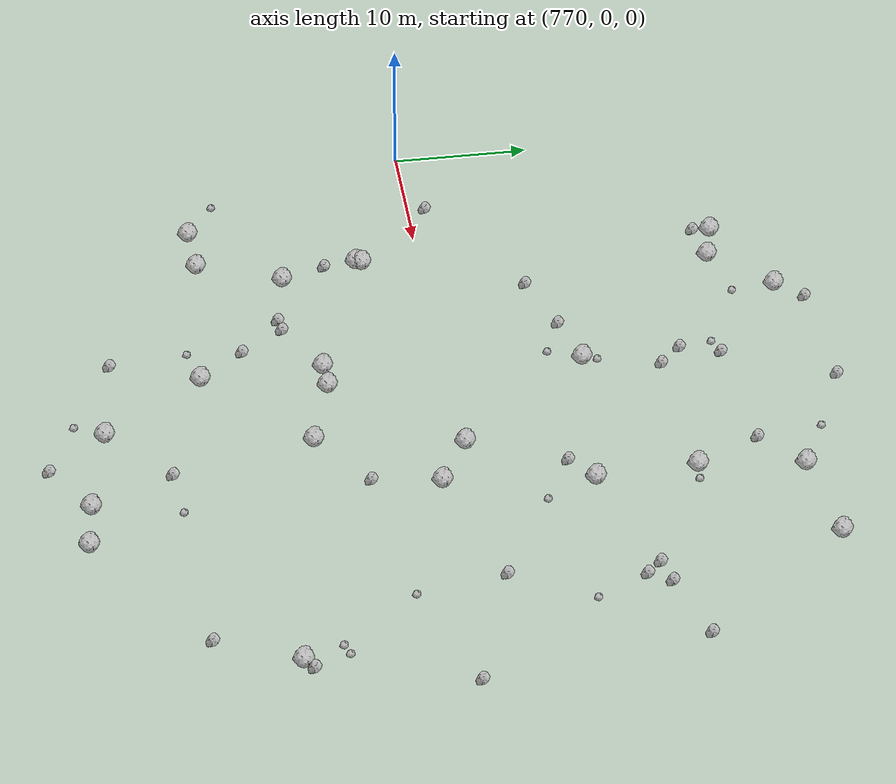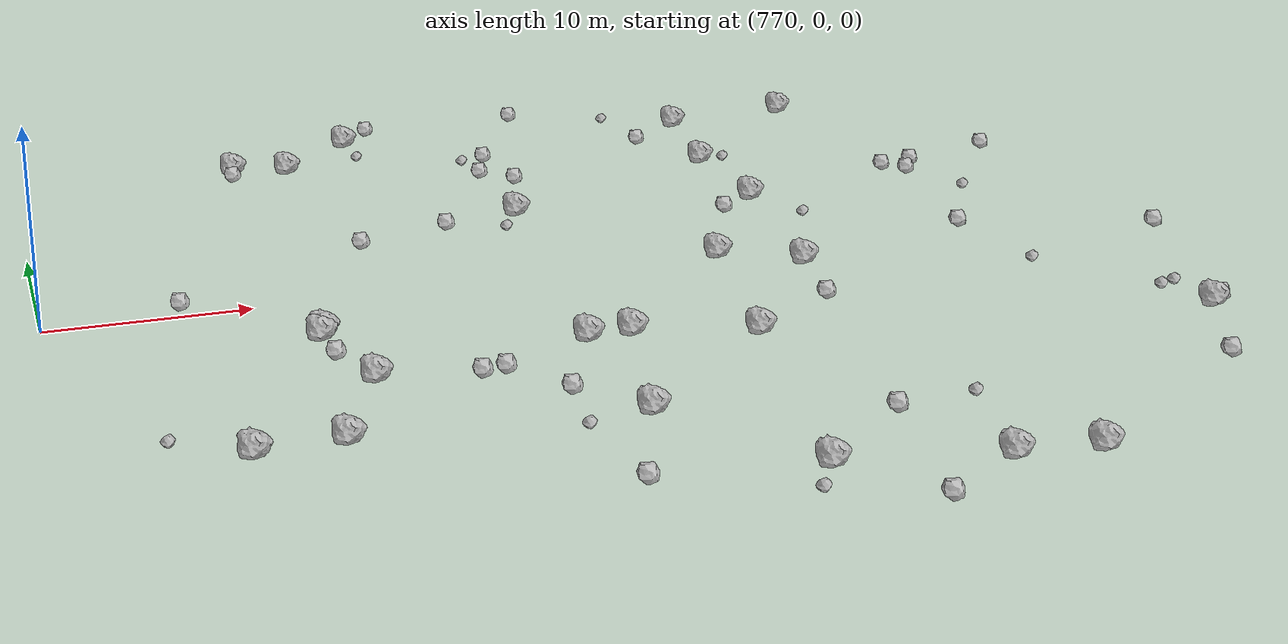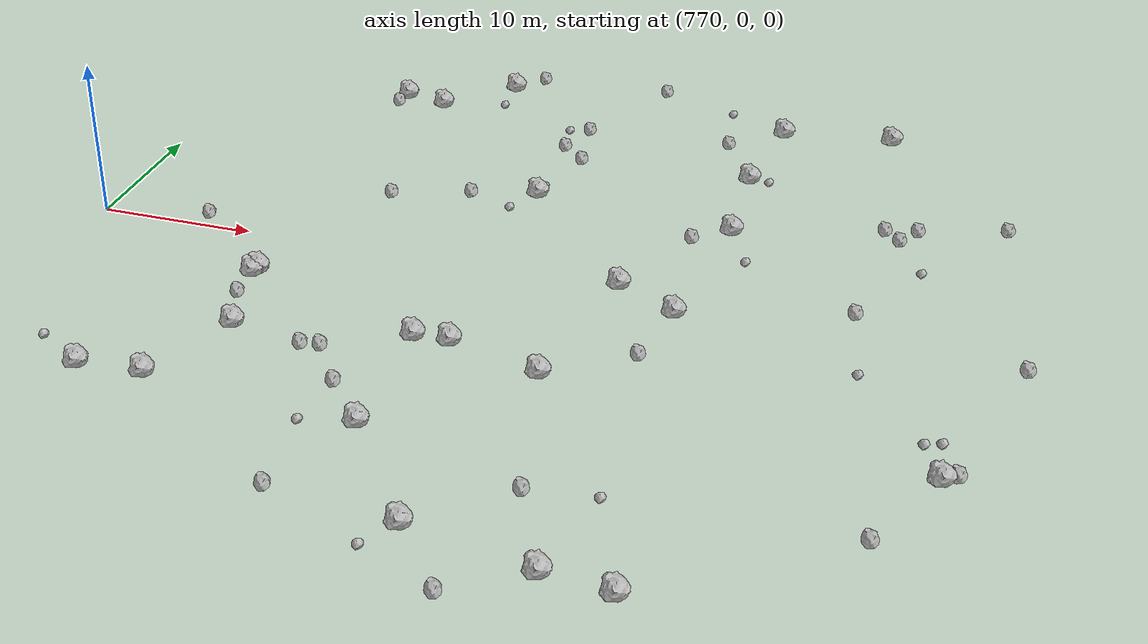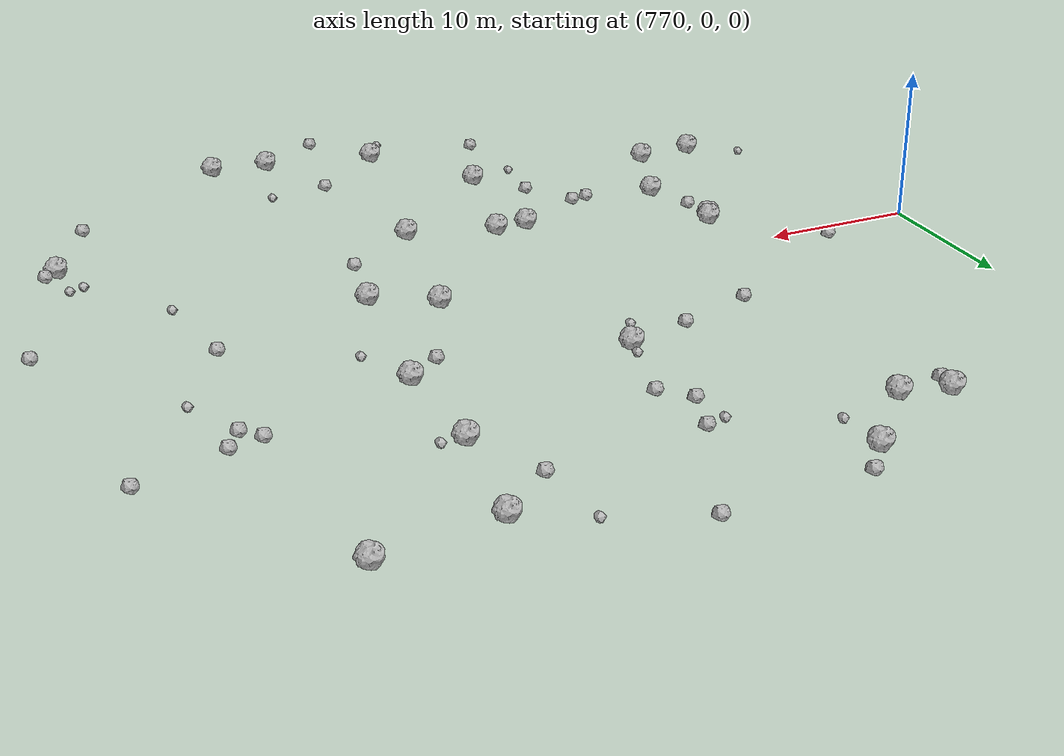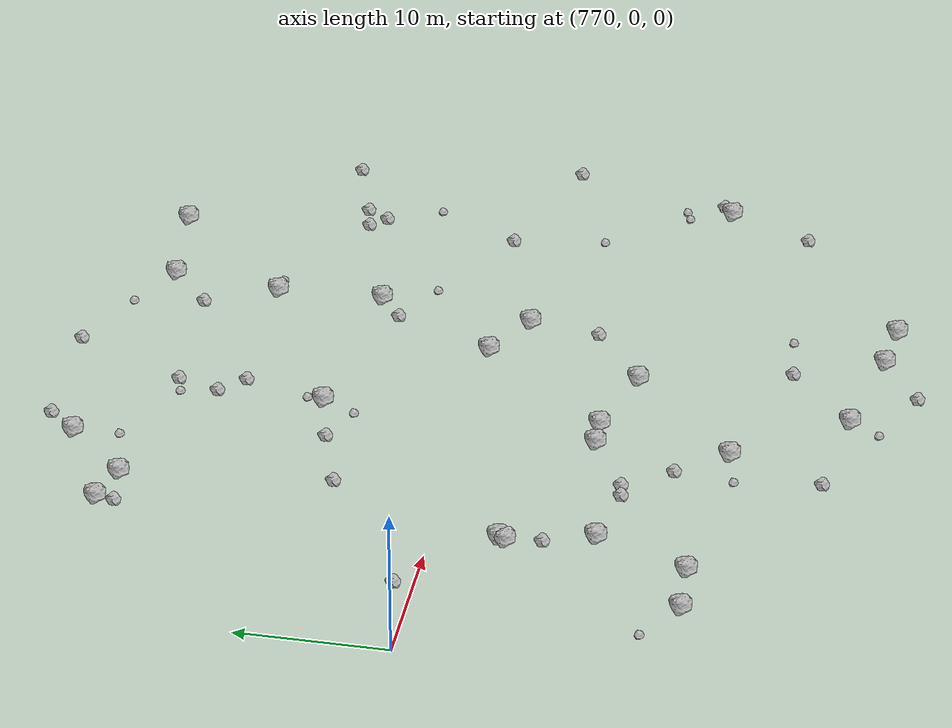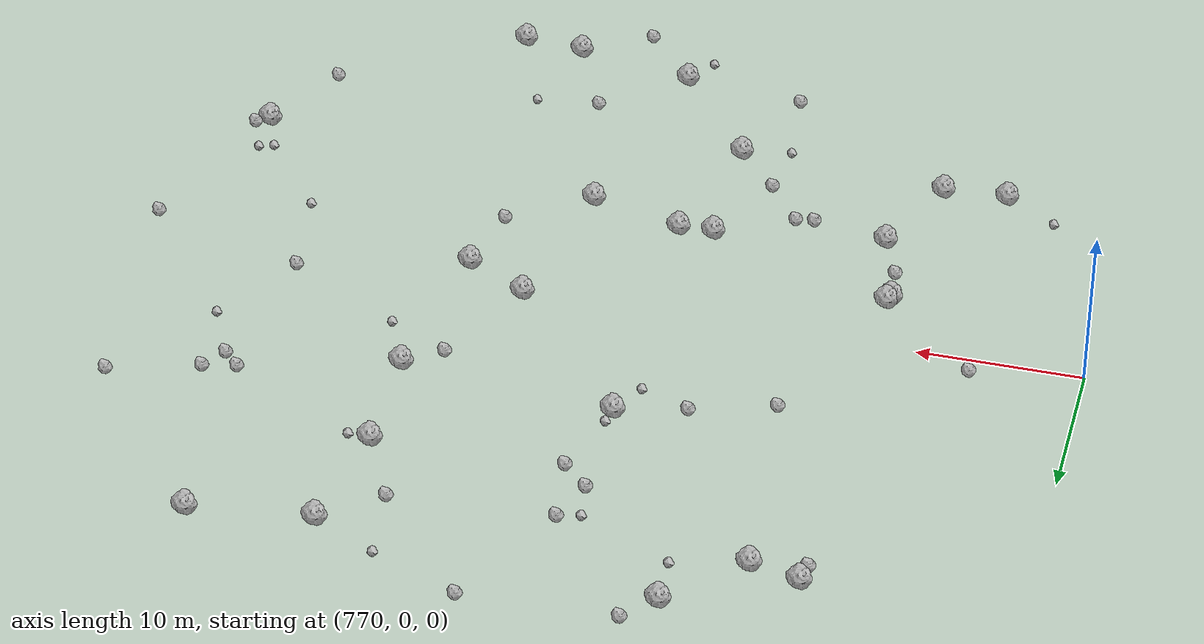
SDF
<sdf version="1.6">
 <world name="default">
  <include><uri>model://sun</uri></include>
  <model name="rock1_20_4">
   <include><uri>model://rock1</uri><pose>782.4890068611851 -4.694191478423999 0.5 0 0 0</pose></include>
  </model>
  <model name="rock1_20_5">
   <include><uri>model://rock1</uri><pose>824.6698236922708 -13.4293214293706 0.5 0 0 0</pose></include>
  </model>
  <model name="rock1_20_6">
   <include><uri>model://rock1</uri><pose>782.6817598080073 -4.269069102321222 0.5 0 0 0</pose></include>
  </model>
  <model name="rock1_20_7">
   <include><uri>model://rock1</uri><pose>796.5390823015198 -8.46349903348898 0.5 0 0 0</pose></include>
  </model>
  <model name="rock1_20_8">
   <include><uri>model://rock1</uri><pose>804.0778983483681 0.3706291223457505 0.5 0 0 0</pose></include>
  </model>
  <model name="rock1_20_9">
   <include><uri>model://rock1</uri><pose>794.359115405365 -8.544253846676078 0.5 0 0 0</pose></include>
  </model>
  <model name="rock1_20_10">
   <include><uri>model://rock1</uri><pose>777.4593332502038 -16.681113458535393 0.5 0 0 0</pose></include>
  </model>
  <model name="rock1_20_11">
   <include><uri>model://rock1</uri><pose>809.1375401626333 8.81052389951327 0.5 0 0 0</pose></include>
  </model>
  <model name="rock1_20_12">
   <include><uri>model://rock1</uri><pose>807.9820843604864 -1.7975042273707587 0.5 0 0 0</pose></include>
  </model>
  <model name="rock1_20_13">
   <include><uri>model://rock1</uri><pose>811.2627314233961 -26.579751713145725 0.5 0 0 0</pose></include>
  </model>
  <model name="rock1_20_14">
   <include><uri>model://rock1</uri><pose>783.9042090125884 -10.310608643823716 0.5 0 0 0</pose></include>
  </model>
  <model name="rock1_20_15">
   <include><uri>model://rock1</uri><pose>799.8156569797621 -24.646512228682774 0.5 0 0 0</pose></include>
  </model>
  <model name="rock1_20_16">
   <include><uri>model://rock1</uri><pose>817.0438597415986 24.551889012680128 0.5 0 0 0</pose></include>
  </model>
  <model name="rock1_20_17">
   <include><uri>model://rock1</uri><pose>781.4387682506149 -16.444802249636275 0.5 0 0 0</pose></include>
  </model>
  <model name="rock1_20_18">
   <include><uri>model://rock1</uri><pose>808.7948941567778 16.089352669238018 0.5 0 0 0</pose></include>
  </model>
  <model name="rock1_20_19">
   <include><uri>model://rock1</uri><pose>789.4564138814596 25.44120347524492 0.5 0 0 0</pose></include>
  </model>
  <model name="rock1_20_20">
   <include><uri>model://rock1</uri><pose>782.3372778274824 22.001287272929055 0.5 0 0 0</pose></include>
  </model>
  <model name="rock1_20_21">
   <include><uri>model://rock1</uri><pose>785.3253266780275 21.243242433740193 0.5 0 0 0</pose></include>
  </model>
  <model name="rock1_20_22">
   <include><uri>model://rock1</uri><pose>802.3497638229871 -10.12794716949815 0.5 0 0 0</pose></include>
  </model>
  <model name="rock1_20_23">
   <include><uri>model://rock1</uri><pose>794.5610024698561 -17.377900653598573 0.5 0 0 0</pose></include>
  </model>
  <model name="rock1_20_24">
   <include><uri>model://rock1</uri><pose>807.3583290887148 -26.15098353191527 0.5 0 0 0</pose></include>
  </model>
  <model name="rock1_20_25">
   <include><uri>model://rock1</uri><pose>795.9624998103276 10.054028683722926 0.5 0 0 0</pose></include>
  </model>
  <model name="rock1_20_26">
   <include><uri>model://rock1</uri><pose>809.7051533723138 23.590073525390757 0.5 0 0 0</pose></include>
  </model>
  <model name="rock2_20_0">
   <include><uri>model://rock2</uri><pose>820.3486592402127 12.150740728573965 0.3 0 0 0</pose></include>
  </model>
  <model name="rock2_20_1">
   <include><uri>model://rock2</uri><pose>795.6963732766715 17.221047070031247 0.3 0 0 0</pose></include>
  </model>
  <model name="rock2_20_2">
   <include><uri>model://rock2</uri><pose>796.6307162952803 20.099670870375313 0.3 0 0 0</pose></include>
  </model>
  <model name="rock2_20_3">
   <include><uri>model://rock2</uri><pose>819.396763841899 10.608830282867153 0.3 0 0 0</pose></include>
  </model>
  <model name="rock2_20_4">
   <include><uri>model://rock2</uri><pose>791.7318810324223 8.968889471746209 0.3 0 0 0</pose></include>
  </model>
  <model name="rock2_20_5">
   <include><uri>model://rock2</uri><pose>782.6731849193911 -7.065841670982703 0.3 0 0 0</pose></include>
  </model>
  <model name="rock2_20_6">
   <include><uri>model://rock2</uri><pose>807.1176332306685 -6.664262765451216 0.3 0 0 0</pose></include>
  </model>
  <model name="rock2_20_7">
   <include><uri>model://rock2</uri><pose>825.4297165395914 -12.776256087382546 0.3 0 0 0</pose></include>
  </model>
  <model name="rock2_20_8">
   <include><uri>model://rock2</uri><pose>828.0974954013312 -1.9948527375791016 0.3 0 0 0</pose></include>
  </model>
  <model name="rock2_20_9">
   <include><uri>model://rock2</uri><pose>804.6745382380176 -20.271434154599703 0.3 0 0 0</pose></include>
  </model>
  <model name="rock2_20_10">
   <include><uri>model://rock2</uri><pose>821.9139902610344 -19.1909651160029 0.3 0 0 0</pose></include>
  </model>
  <model name="rock2_20_11">
   <include><uri>model://rock2</uri><pose>792.1343941602254 -23.71607228509472 0.3 0 0 0</pose></include>
  </model>
  <model name="rock2_20_12">
   <include><uri>model://rock2</uri><pose>776.6567164093565 1.2938227814019427 0.3 0 0 0</pose></include>
  </model>
  <model name="rock2_20_13">
   <include><uri>model://rock2</uri><pose>825.7543571690777 13.809902030077936 0.3 0 0 0</pose></include>
  </model>
  <model name="rock2_20_14">
   <include><uri>model://rock2</uri><pose>800.2751447788934 27.826254152582173 0.3 0 0 0</pose></include>
  </model>
  <model name="rock2_20_15">
   <include><uri>model://rock2</uri><pose>797.3262276207091 15.610911819571236 0.3 0 0 0</pose></include>
  </model>
  <model name="rock2_20_16">
   <include><uri>model://rock2</uri><pose>806.9321660110986 7.2143996938498205 0.3 0 0 0</pose></include>
  </model>
  <model name="rock2_20_17">
   <include><uri>model://rock2</uri><pose>803.1556664660831 -28.780812964673867 0.3 0 0 0</pose></include>
  </model>
  <model name="rock2_20_18">
   <include><uri>model://rock2</uri><pose>789.6892374675688 -10.976905064387314 0.3 0 0 0</pose></include>
  </model>
  <model name="rock2_20_19">
   <include><uri>model://rock2</uri><pose>791.8488504780743 -14.112839562852724 0.3 0 0 0</pose></include>
  </model>
  <model name="rock2_20_20">
   <include><uri>model://rock2</uri><pose>818.0888370993505 1.2085164927557308 0.3 0 0 0</pose></include>
  </model>
  <model name="rock2_20_21">
   <include><uri>model://rock2</uri><pose>806.3672769330334 20.80395203214362 0.3 0 0 0</pose></include>
  </model>
  <model name="rock2_20_22">
   <include><uri>model://rock2</uri><pose>782.0906518144266 20.739693732033793 0.3 0 0 0</pose></include>
  </model>
  <model name="rock2_20_23">
   <include><uri>model://rock2</uri><pose>786.7774222021361 7.348287943276155 0.3 0 0 0</pose></include>
  </model>
  <model name="rock2_20_24">
   <include><uri>model://rock2</uri><pose>818.3427890923741 11.686782139127821 0.3 0 0 0</pose></include>
  </model>
  <model name="rock2_20_25">
   <include><uri>model://rock2</uri><pose>791.1227720101956 27.39473184269594 0.3 0 0 0</pose></include>
  </model>
  <model name="rock2_20_26">
   <include><uri>model://rock2</uri><pose>788.5480194254518 -11.151146695345243 0.3 0 0 0</pose></include>
  </model>
  <model name="rock3_20_0">
   <include><uri>model://rock3</uri><pose>808.6227776222119 -19.868447311851103 0.2 0 0 0</pose></include>
  </model>
  <model name="rock3_20_1">
   <include><uri>model://rock3</uri><pose>791.4253902953716 -18.08491630220189 0.2 0 0 0</pose></include>
  </model>
  <model name="rock3_20_2">
   <include><uri>model://rock3</uri><pose>798.4933983639197 -26.74431924853472 0.2 0 0 0</pose></include>
  </model>
  <model name="rock3_20_3">
   <include><uri>model://rock3</uri><pose>794.746500808218 7.696675956114014 0.2 0 0 0</pose></include>
  </model>
  <model name="rock3_20_4">
   <include><uri>model://rock3</uri><pose>805.6420683365092 25.54184168446298 0.2 0 0 0</pose></include>
  </model>
  <model name="rock3_20_5">
   <include><uri>model://rock3</uri><pose>810.7419295450153 5.169455600520671 0.2 0 0 0</pose></include>
  </model>
  <model name="rock3_20_6">
   <include><uri>model://rock3</uri><pose>789.5674971727478 22.30361381046196 0.2 0 0 0</pose></include>
  </model>
  <model name="rock3_20_7">
   <include><uri>model://rock3</uri><pose>795.2557503082127 19.640269868075748 0.2 0 0 0</pose></include>
  </model>
  <model name="rock3_20_8">
   <include><uri>model://rock3</uri><pose>774.1449642736058 -14.628957401628757 0.2 0 0 0</pose></include>
  </model>
  <model name="rock3_20_9">
   <include><uri>model://rock3</uri><pose>796.07064919122 11.133653283459708 0.2 0 0 0</pose></include>
  </model>
  <model name="rock3_20_10">
   <include><uri>model://rock3</uri><pose>819.1725545394401 -5.160604333017353 0.2 0 0 0</pose></include>
  </model>
  <model name="rock3_20_11">
   <include><uri>model://rock3</uri><pose>810.0934763096615 15.95729068101501 0.2 0 0 0</pose></include>
  </model>
  <model name="rock3_20_12">
   <include><uri>model://rock3</uri><pose>823.4334622860216 -10.612956665681821 0.2 0 0 0</pose></include>
  </model>
  <model name="rock3_20_13">
   <include><uri>model://rock3</uri><pose>821.1879056791545 6.894571919779146 0.2 0 0 0</pose></include>
  </model>
  <model name="rock3_20_14">
   <include><uri>model://rock3</uri><pose>824.3422432987447 -10.287916724612419 0.2 0 0 0</pose></include>
  </model>
 </world>
</sdf>
